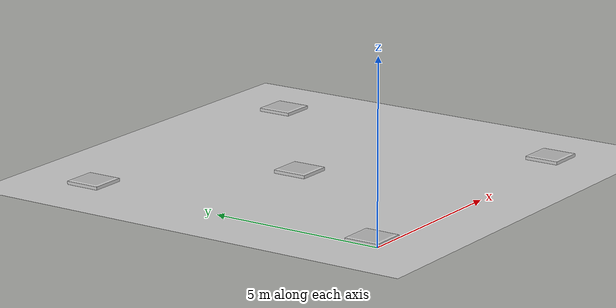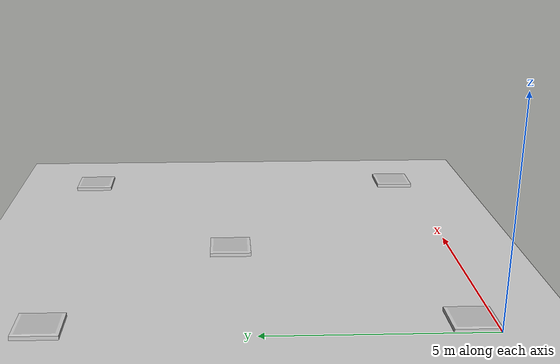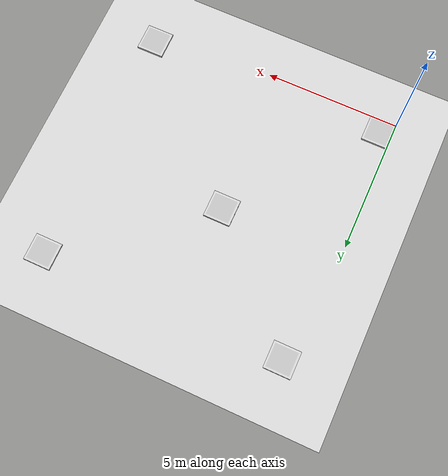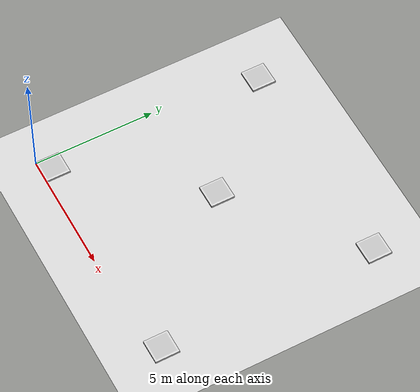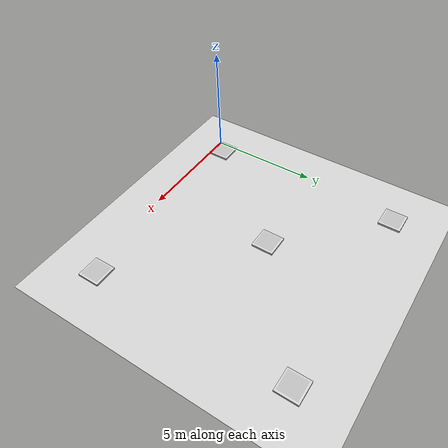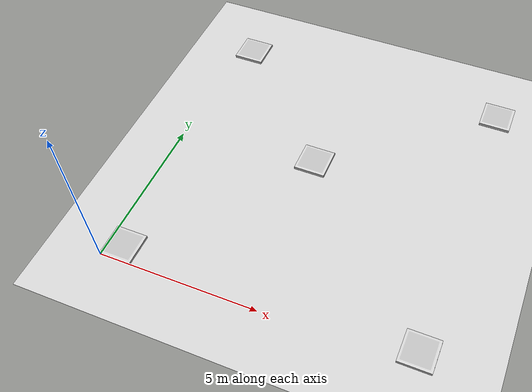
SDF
<sdf version="1.7">
 <world name="default">
  <light name="sun" type="directional">
   <pose>0 0 10 0 -0 0</pose>
   <diffuse>0.8 0.8 0.8 1</diffuse>
   <specular>0.2 0.2 0.2 1</specular>
   <attenuation>
    <range>1000</range>
    <constant>0.9</constant>
    <linear>0.01</linear>
    <quadratic>0.001</quadratic>
   </attenuation>
   <direction>-0.5 0.1 -0.9</direction>
   <spot><inner_angle>0</inner_angle><outer_angle>0</outer_angle><falloff>0</falloff></spot>
  </light>
  <model name="ground_plane">
   <static>1</static>
   <link name="link">
    <collision name="collision">
     <geometry><plane><normal>0 0 1</normal><size>100 100</size></plane></geometry>
     <surface><friction><ode><mu>100</mu><mu2>50</mu2></ode></friction></surface>
    </collision>
    <visual name="visual">
     <cast_shadows>0</cast_shadows>
     <geometry><plane><normal>0 0 1</normal><size>100 100</size></plane></geometry>
     <material>
      <script><uri>file://media/materials/scripts/gazebo.material</uri><name>Gazebo/Grey</name></script>
     </material>
    </visual>
   </link>
  </model>
  <gravity>0 0 -9.8</gravity>
  <magnetic_field>6e-06 2.3e-05 -4.2e-05</magnetic_field>
  <atmosphere type="adiabatic"/>
  <physics type="ode">
   <max_step_size>0.001</max_step_size>
   <real_time_factor>1</real_time_factor>
   <real_time_update_rate>1000</real_time_update_rate>
  </physics>
  <scene><ambient>0.4 0.4 0.4 1</ambient><background>0.7 0.7 0.7 1</background><shadows>1</shadows></scene>
  <spherical_coordinates>
   <surface_model>EARTH_WGS84</surface_model>
   <latitude_deg>0</latitude_deg>
   <longitude_deg>0</longitude_deg>
   <elevation>0</elevation>
   <heading_deg>0</heading_deg>
  </spherical_coordinates>
  <model name="landing_pad">
   <link name="link">
    <visual name="visual">
     <geometry>
      <mesh><scale>0.5 0.5 0.5</scale><uri>model://landing_pad/meshes/landing_pad.dae</uri></mesh>
     </geometry>
    </visual>
    <collision name="collision">
     <geometry>
      <mesh><scale>0.5 0.5 0.5</scale><uri>model://landing_pad/meshes/landing_pad.dae</uri></mesh>
     </geometry>
    </collision>
    <inertial>
     <mass>1</mass>
     <inertia><ixx>1</ixx><ixy>0</ixy><ixz>0</ixz><iyy>1</iyy><iyz>0</iyz><izz>1</izz></inertia>
     <origin xyz="0 0 0" rpy="0 0 0"/>
    </inertial>
   </link>
   <pose>0.5 0.5 0.049811 3e-06 -0 0</pose>
  </model>
  <model name="landing_pad_0">
   <link name="link">
    <visual name="visual">
     <geometry>
      <mesh><scale>0.5 0.5 0.5</scale><uri>model://landing_pad/meshes/landing_pad.dae</uri></mesh>
     </geometry>
    </visual>
    <collision name="collision">
     <geometry>
      <mesh><scale>0.5 0.5 0.5</scale><uri>model://landing_pad/meshes/landing_pad.dae</uri></mesh>
     </geometry>
    </collision>
    <inertial>
     <mass>1</mass>
     <inertia><ixx>1</ixx><ixy>0</ixy><ixz>0</ixz><iyy>1</iyy><iyz>0</iyz><izz>1</izz></inertia>
     <origin xyz="0 0 0" rpy="0 0 0"/>
    </inertial>
   </link>
   <pose>9.5 9.5 0.049819 0 -0 0</pose>
  </model>
  <model name="landing_pad_1">
   <link name="link">
    <visual name="visual">
     <geometry>
      <mesh><scale>0.5 0.5 0.5</scale><uri>model://landing_pad/meshes/landing_pad.dae</uri></mesh>
     </geometry>
    </visual>
    <collision name="collision">
     <geometry>
      <mesh><scale>0.5 0.5 0.5</scale><uri>model://landing_pad/meshes/landing_pad.dae</uri></mesh>
     </geometry>
    </collision>
    <inertial>
     <mass>1</mass>
     <inertia><ixx>1</ixx><ixy>0</ixy><ixz>0</ixz><iyy>1</iyy><iyz>0</iyz><izz>1</izz></inertia>
     <origin xyz="0 0 0" rpy="0 0 0"/>
    </inertial>
   </link>
   <pose>4.5 5.5 0.04981 0 -0 0</pose>
  </model>
  <model name="landing_pad_2">
   <link name="link">
    <visual name="visual">
     <geometry>
      <mesh><scale>0.5 0.5 0.5</scale><uri>model://landing_pad/meshes/landing_pad.dae</uri></mesh>
     </geometry>
    </visual>
    <collision name="collision">
     <geometry>
      <mesh><scale>0.5 0.5 0.5</scale><uri>model://landing_pad/meshes/landing_pad.dae</uri></mesh>
     </geometry>
    </collision>
    <inertial>
     <mass>1</mass>
     <inertia><ixx>1</ixx><ixy>0</ixy><ixz>0</ixz><iyy>1</iyy><iyz>0</iyz><izz>1</izz></inertia>
     <origin xyz="0 0 0" rpy="0 0 0"/>
    </inertial>
   </link>
   <pose>0.5 9.5 0.049819 0 -0 0</pose>
  </model>
  <model name="landing_pad_3">
   <link name="link">
    <visual name="visual">
     <geometry>
      <mesh><scale>0.5 0.5 0.5</scale><uri>model://landing_pad/meshes/landing_pad.dae</uri></mesh>
     </geometry>
    </visual>
    <collision name="collision">
     <geometry>
      <mesh><scale>0.5 0.5 0.5</scale><uri>model://landing_pad/meshes/landing_pad.dae</uri></mesh>
     </geometry>
    </collision>
    <inertial>
     <mass>1</mass>
     <inertia><ixx>1</ixx><ixy>0</ixy><ixz>0</ixz><iyy>1</iyy><iyz>0</iyz><izz>1</izz></inertia>
     <origin xyz="0 0 0" rpy="0 0 0"/>
    </inertial>
   </link>
   <pose>9.5 0.5 0.04981 0 -0 0</pose>
  </model>
 </world>
</sdf>
